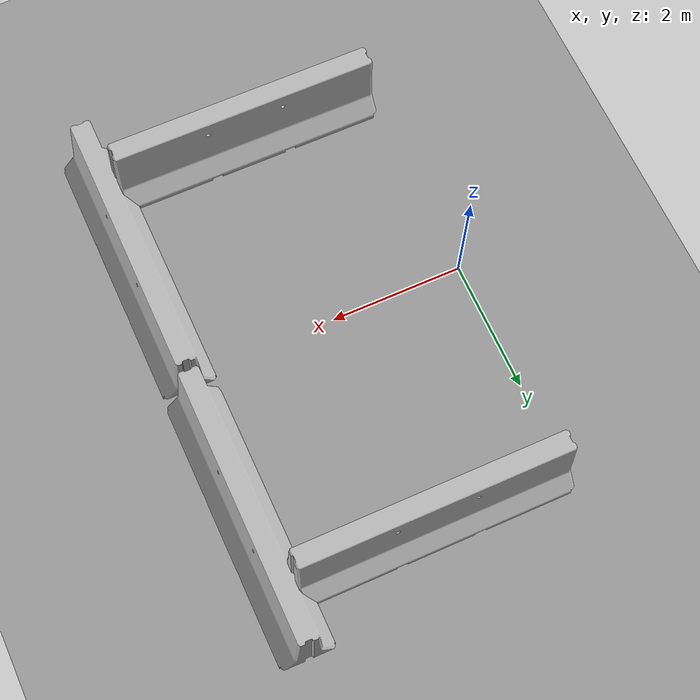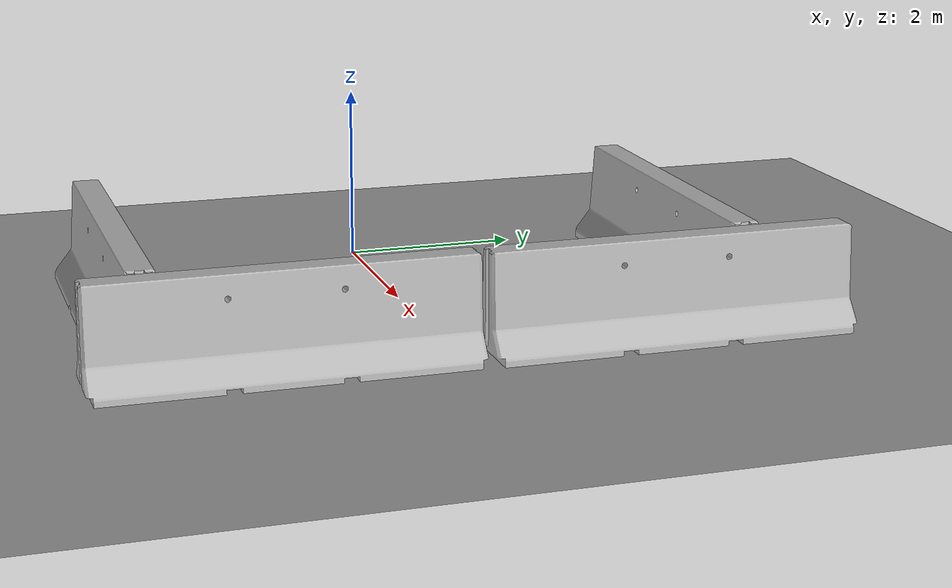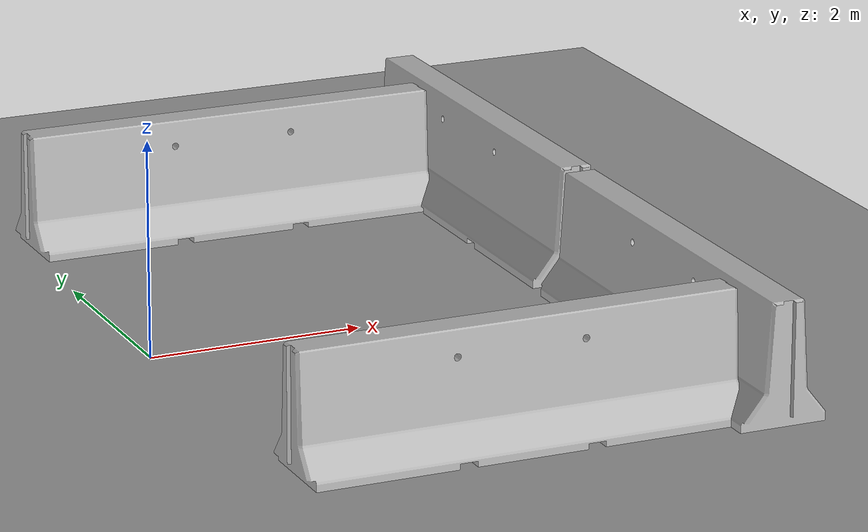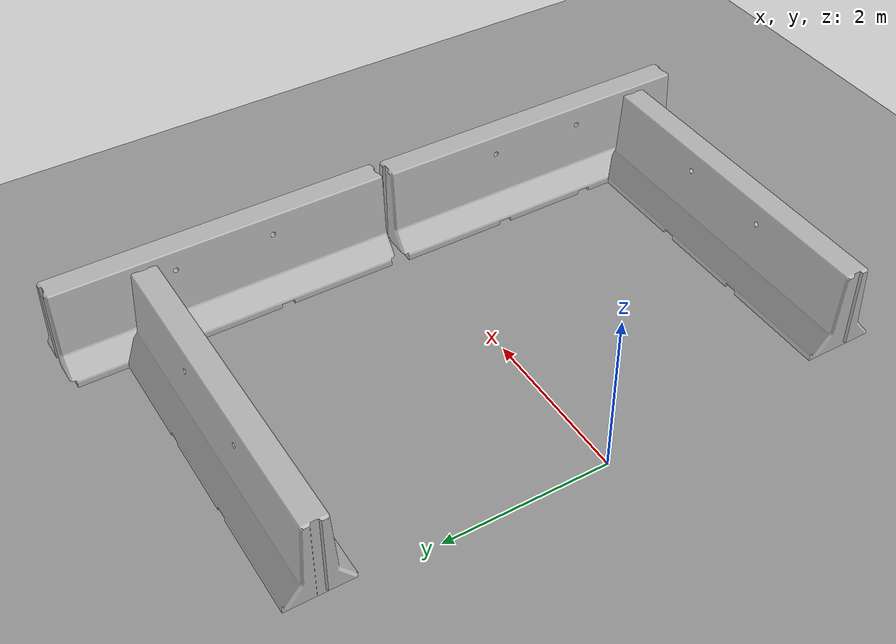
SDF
<sdf version="1.6">
 <world name="default">
  <model name="ground_plane_0">
   <static>1</static>
   <link name="link">
    <collision name="collision">
     <geometry><plane><normal>0 0 1</normal><size>100 100</size></plane></geometry>
     <surface><friction><ode><mu>100</mu><mu2>50</mu2></ode></friction></surface>
    </collision>
    <visual name="visual">
     <cast_shadows>0</cast_shadows>
     <geometry><plane><normal>0 0 1</normal><size>100 100</size></plane></geometry>
     <material>
      <script><uri>file://media/materials/scripts/gazebo.material</uri><name>Gazebo/Grey</name></script>
     </material>
    </visual>
    <velocity_decay><linear>0</linear><angular>0</angular></velocity_decay>
   </link>
   <pose>0.497681 0 0 0 -0 0</pose>
  </model>
  <model name="jersey_barrier_0_clone">
   <static>1</static>
   <link name="link">
    <visual name="visual">
     <geometry>
      <mesh><uri>model://jersey_barrier/meshes/jersey_barrier.dae</uri><scale>1 1 1</scale></mesh>
     </geometry>
    </visual>
    <collision name="upright">
     <pose>0 0 0.5715 0 -0 0</pose>
     <geometry><box><size>4.06542 0.3063 1.143</size></box></geometry>
    </collision>
    <collision name="base">
     <pose>0 0 0.032258 0 -0 0</pose>
     <geometry><box><size>4.06542 0.8107 0.064516</size></box></geometry>
    </collision>
    <collision name="base2">
     <pose>0 0 0.1 0 -0 0</pose>
     <geometry><box><size>4.06542 0.65 0.1</size></box></geometry>
    </collision>
    <collision name="base3">
     <pose>0 0 0.2 0 -0 0</pose>
     <geometry><box><size>4.06542 0.5 0.1</size></box></geometry>
    </collision>
    <collision name="left-angle">
     <pose>0 -0.224 0.2401 0.9 -0 0</pose>
     <geometry><box><size>4.06542 0.5 0.064516</size></box></geometry>
    </collision>
    <collision name="right-angle">
     <pose>0 0.224 0.2401 -0.9 0 0</pose>
     <geometry><box><size>4.06542 0.5 0.064516</size></box></geometry>
    </collision>
   </link>
   <pose>2.03388 -3.21743 0 0 -0 0</pose>
  </model>
  <model name="jersey_barrier_0_clone_0">
   <static>1</static>
   <link name="link">
    <visual name="visual">
     <geometry>
      <mesh><uri>model://jersey_barrier/meshes/jersey_barrier.dae</uri><scale>1 1 1</scale></mesh>
     </geometry>
    </visual>
    <collision name="upright">
     <pose>0 0 0.5715 0 -0 0</pose>
     <geometry><box><size>4.06542 0.3063 1.143</size></box></geometry>
    </collision>
    <collision name="base">
     <pose>0 0 0.032258 0 -0 0</pose>
     <geometry><box><size>4.06542 0.8107 0.064516</size></box></geometry>
    </collision>
    <collision name="base2">
     <pose>0 0 0.1 0 -0 0</pose>
     <geometry><box><size>4.06542 0.65 0.1</size></box></geometry>
    </collision>
    <collision name="base3">
     <pose>0 0 0.2 0 -0 0</pose>
     <geometry><box><size>4.06542 0.5 0.1</size></box></geometry>
    </collision>
    <collision name="left-angle">
     <pose>0 -0.224 0.2401 0.9 -0 0</pose>
     <geometry><box><size>4.06542 0.5 0.064516</size></box></geometry>
    </collision>
    <collision name="right-angle">
     <pose>0 0.224 0.2401 -0.9 0 0</pose>
     <geometry><box><size>4.06542 0.5 0.064516</size></box></geometry>
    </collision>
   </link>
   <pose>2.05183 3.29534 0 0 -0 0</pose>
  </model>
  <model name="jersey_barrier_0_clone_2_clone_0">
   <static>1</static>
   <link name="link">
    <visual name="visual">
     <geometry>
      <mesh><uri>model://jersey_barrier/meshes/jersey_barrier.dae</uri><scale>1 1 1</scale></mesh>
     </geometry>
    </visual>
    <collision name="upright">
     <pose>0 0 0.5715 0 -0 0</pose>
     <geometry><box><size>4.06542 0.3063 1.143</size></box></geometry>
    </collision>
    <collision name="base">
     <pose>0 0 0.032258 0 -0 0</pose>
     <geometry><box><size>4.06542 0.8107 0.064516</size></box></geometry>
    </collision>
    <collision name="base2">
     <pose>0 0 0.1 0 -0 0</pose>
     <geometry><box><size>4.06542 0.65 0.1</size></box></geometry>
    </collision>
    <collision name="base3">
     <pose>0 0 0.2 0 -0 0</pose>
     <geometry><box><size>4.06542 0.5 0.1</size></box></geometry>
    </collision>
    <collision name="left-angle">
     <pose>0 -0.224 0.2401 0.9 -0 0</pose>
     <geometry><box><size>4.06542 0.5 0.064516</size></box></geometry>
    </collision>
    <collision name="right-angle">
     <pose>0 0.224 0.2401 -0.9 0 0</pose>
     <geometry><box><size>4.06542 0.5 0.064516</size></box></geometry>
    </collision>
   </link>
   <pose>4.29242 -1.83245 0 0 0 -1.5708</pose>
  </model>
  <model name="jersey_barrier_0_clone_2_clone_1">
   <static>1</static>
   <link name="link">
    <visual name="visual">
     <geometry>
      <mesh><uri>model://jersey_barrier/meshes/jersey_barrier.dae</uri><scale>1 1 1</scale></mesh>
     </geometry>
    </visual>
    <collision name="upright">
     <pose>0 0 0.5715 0 -0 0</pose>
     <geometry><box><size>4.06542 0.3063 1.143</size></box></geometry>
    </collision>
    <collision name="base">
     <pose>0 0 0.032258 0 -0 0</pose>
     <geometry><box><size>4.06542 0.8107 0.064516</size></box></geometry>
    </collision>
    <collision name="base2">
     <pose>0 0 0.1 0 -0 0</pose>
     <geometry><box><size>4.06542 0.65 0.1</size></box></geometry>
    </collision>
    <collision name="base3">
     <pose>0 0 0.2 0 -0 0</pose>
     <geometry><box><size>4.06542 0.5 0.1</size></box></geometry>
    </collision>
    <collision name="left-angle">
     <pose>0 -0.224 0.2401 0.9 -0 0</pose>
     <geometry><box><size>4.06542 0.5 0.064516</size></box></geometry>
    </collision>
    <collision name="right-angle">
     <pose>0 0.224 0.2401 -0.9 0 0</pose>
     <geometry><box><size>4.06542 0.5 0.064516</size></box></geometry>
    </collision>
   </link>
   <pose>4.31693 2.32708 0 0 0 -1.5708</pose>
  </model>
 </world>
</sdf>
